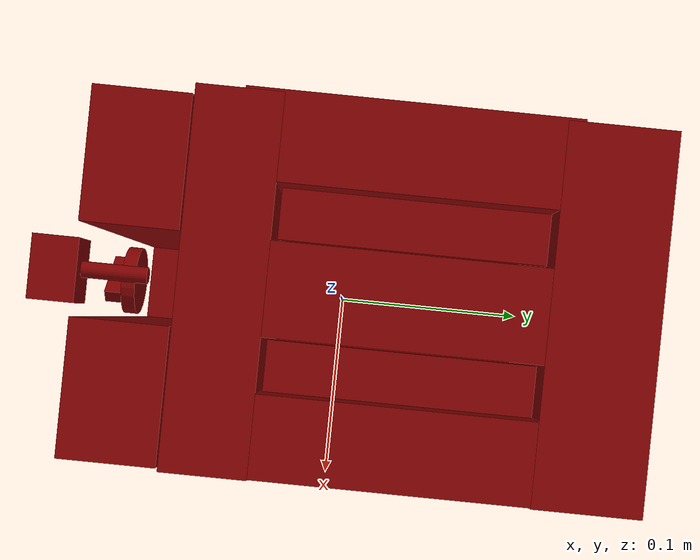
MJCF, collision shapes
<?xml version='1.0' encoding='UTF-8'?>
<mujoco model="model">
  <compiler angle="radian"/>
  <asset>
    <mesh file="visuals/Body001.obj" name="Body001_vis"/>
    <mesh file="visuals/Button001.obj" name="Button001_vis"/>
    <mesh file="visuals/Knob001.obj" name="Knob001_vis"/>
    <mesh file="visuals/Lever001.obj" name="Lever001_vis"/>
    <texture file="visuals/T_BC001.png" name="Body001_material" type="2d"/>
    <material name="Body001_material" rgba="1 1 1 1.0" texture="Body001_material" shininess="0.4472135901451111" specular="4"/>
    <texture file="visuals/T_BC001.png" name="Button001_material" type="2d"/>
    <material name="Button001_material" rgba="1 1 1 1.0" texture="Button001_material" shininess="0.4472135901451111" specular="0.3103448502657381"/>
    <texture file="visuals/T_BC001.png" name="Knob001_material" type="2d"/>
    <material name="Knob001_material" rgba="1 1 1 1.0" texture="Knob001_material" shininess="0.4472135901451111" specular="0.3103448502657381"/>
    <texture file="visuals/T_BC001.png" name="Lever001_material" type="2d"/>
    <material name="Lever001_material" rgba="1 1 1 1.0" texture="Lever001_material" shininess="0.4472135901451111" specular="0.3103448502657381"/>
  </asset>
  <default>
    <default class="visual">
      <geom conaffinity="0" contype="0" group="1" type="mesh"/>
    </default>
    <default class="collision">
      <geom group="0" rgba="0.5 0 0 0.5"/>
    </default>
    <default class="spawn">
      <geom group="0" rgba="1 1 1 0.5" contype="0" conaffinity="0"/>
      <site group="0" rgba="1 1 1 0.5"/>
    </default>
    <default class="region">
      <geom group="1" conaffinity="0" contype="0" rgba="0 1 0 0"/>
    </default>
  </default>
  <worldbody>
    <body>
      <body name="object">
        <geom mesh="Body001_vis" type="mesh" solimp="0.998 0.998 0.001" solref="0.001 1" density="100" friction="0.95 0.3 0.1" class="visual" material="Body001_material"/>
        <geom class="collision" type="box" pos="-0.0007909499108791351 0.1251961588859558 0.00011853128671646118" size="0.09203922748565674 0.02654566802084446 0.12266501039266586" quat="1.0 0.0 0.0 0.0"/>
        <geom class="collision" type="box" pos="-0.0007909499108791351 -0.056758515536785126 0.00011853128671646118" size="0.09203943610191345 0.021184850484132767 0.12266501039266586" quat="1.0 0.0 0.0 0.0"/>
        <geom class="collision" type="box" pos="0.00856953114271164 0.032807718962430954 -0.038557104766368866" size="0.07888726890087128 0.10513870418071747 0.0479523204267025" quat="1.0 0.0 0.0 0.0"/>
        <geom class="collision" type="box" pos="0.0557553730905056 -0.10189918428659439 0.0024007856845855713" size="0.03337135538458824 0.023660745471715927 0.12395010143518448" quat="1.0 0.0 0.0 0.0"/>
        <geom class="collision" type="box" pos="-0.054832007735967636 -0.10189918428659439 0.0024007856845855713" size="0.03223841264843941 0.023660745471715927 0.12395043671131134" quat="1.0 0.0 0.0 0.0"/>
        <geom class="collision" type="box" pos="0.003287307918071747 -0.10189918428659439 -0.09885264933109283" size="0.029956890270113945 0.023661362007260323 0.02430085279047489" quat="1.0 0.0 0.0 0.0"/>
        <geom class="collision" type="box" pos="0.0003206567489542067 0.026389360427856445 0.018105398863554" size="0.022962937131524086 0.08072192966938019 0.1046023741364479" quat="1.0 0.0 0.0 0.0"/>
        <geom class="collision" type="box" pos="0.0704355463385582 0.026389360427856445 0.018105398863554" size="0.020348144695162773 0.08072096109390259 0.10460196435451508" quat="1.0 0.0 0.0 0.0"/>
        <geom class="collision" type="box" pos="-0.07212179154157639 0.026389360427856445 0.018105398863554" size="0.02188052050769329 0.08072096109390259 0.10460040718317032" quat="1.0 0.0 0.0 0.0"/>
        <body name="Button001">
          <joint axis="0.0 1.0 0.0" pos="-0.04275631532073021 -0.12891976535320282 -0.06662700325250626" limited="true" name="Button001_joint" range="0.0 0.002" type="slide" damping="1" frictionloss="1" armature=".01" stiffness="0.05"/>
          <geom mesh="Button001_vis" type="mesh" solimp="0.998 0.998 0.001" solref="0.001 1" density="100" friction="0.95 0.3 0.1" class="visual" material="Button001_material"/>
          <geom class="collision" type="box" pos="-0.04275631532073021 -0.12891975045204163 -0.06662700325250626" size="0.00963444821536541 0.0027892878279089928 0.004607340320944786" quat="1.0 0.0 0.0 0.0"/>
        </body>
        <body name="Knob001">
          <joint axis="0.0 1.0 0.0" pos="0.0003405575407668948 -0.12636250257492065 -0.027965858578681946" limited="true" name="Knob001_joint" range="0.0 4.71238898038469" type="hinge" damping="0.05" armature="0.001"/>
          <geom mesh="Knob001_vis" type="mesh" solimp="0.998 0.998 0.001" solref="0.001 1" density="100" friction="0.95 0.3 0.1" class="visual" material="Knob001_material"/>
          <geom class="collision" type="cylinder" pos="0.0007184958667494357 -0.12685799598693848 -0.02810978889465332" size="0.01995346136391163 0.003967595752328634" quat="0.7071068286895752 0.7071067690849304 -1.5700924318127872e-16 -5.9269340452702814e-24"/>
          <geom class="collision" type="box" pos="0.0008633703109808266 -0.13425526022911072 -0.027355236932635307" size="0.004091683309525251 0.007059119641780853 0.015640471130609512" quat="0.9238795042037964 0.0 0.3826834559440613 0.0"/>
        </body>
        <body name="Lever001">
          <joint axis="0.0 0.0 -1.0" pos="0.0002551083161961287 -0.13635873794555664 0.09603241086006165" limited="true" name="Lever001_joint" range="0.0 0.06" type="slide" damping="1" frictionloss="1" armature=".01" stiffness="1" springref="-2"/>
          <geom mesh="Lever001_vis" type="mesh" solimp="0.998 0.998 0.001" solref="0.001 1" density="100" friction="0.95 0.3 0.1" class="visual" material="Lever001_material"/>
          <geom class="collision" type="box" pos="0.00031183630926534534 -0.1403096318244934 0.0958966463804245" size="0.01597939059138298 0.011509011499583721 0.011890672147274017" quat="1.0 0.0 0.0 0.0" name="lever_knob"/>
          <geom class="collision" type="cylinder" pos="-0.0006598089821636677 -0.11287302523851395 0.09605066478252411" size="0.0040744030848145485 0.016815736889839172" quat="0.7071068286895752 -0.7071067690849304 -1.5700924318127872e-16 2.4643894772246815e-23"/>
          <geom class="collision" type="box" pos="-0.03649313747882843 0.03180425986647606 0.10729890316724777" size="0.012500002980232239 0.06499999761581421 0.004556924104690552" quat="1.0 0.0 0.0 0.0" name="slotL_floor"/>
          <geom class="collision" type="box" pos="0.03684080392122269 0.03180425986647606 0.10729890316724777" size="0.012500002980232239 0.06499999761581421 0.004556924104690552" quat="1.0 0.0 0.0 0.0" name="slotR_floor"/>
        </body>
        <geom class="region" name="reg_main" type="box" pos="0.0 0.012272685766220093 0.0" size="0.09284645318984985 0.14060863852500916 0.12240996956825256"/>
      </body>
    </body>
  </worldbody>
  <actuator>
    <motor name="Button001_joint_actuator" joint="Button001_joint" gear="0.5"/>
    <motor name="Knob001_joint_actuator" joint="Knob001_joint" gear="10"/>
    <motor name="Lever001_joint_actuator" joint="Lever001_joint" gear="10"/>
  </actuator>
</mujoco>
